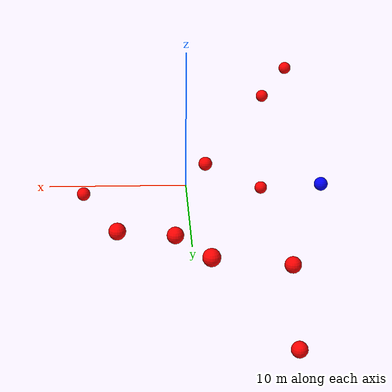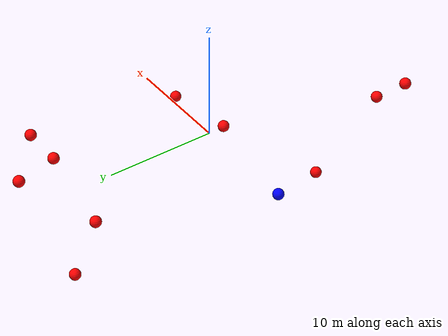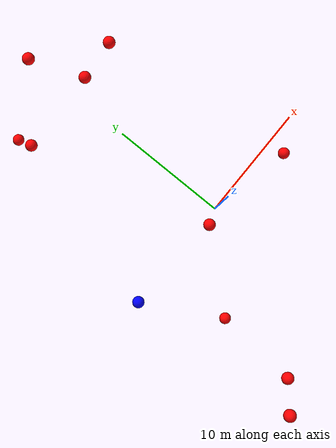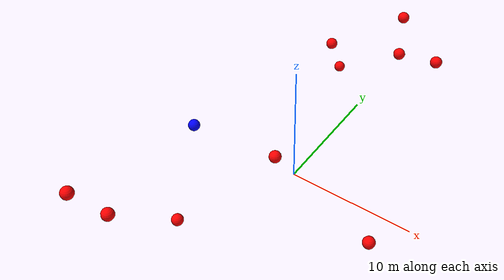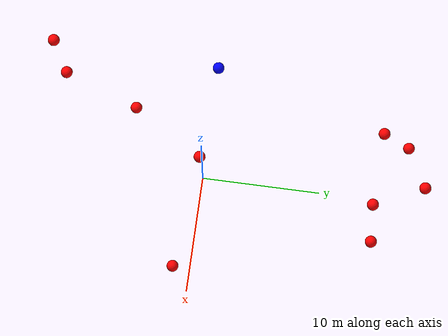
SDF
<?xml version="1.0" ?>
<sdf version="1.8">
    <world name="3d_world">
        <physics name="1ms" type="ode">
            <max_step_size>0.001</max_step_size>
            <real_time_factor>1.0</real_time_factor>
            <real_time_update_rate>1000.0</real_time_update_rate>
        </physics>
        <gravity>0 0 0</gravity>

        <plugin
            filename="gz-sim-physics-system"
            name="gz::sim::v8::systems::Physics">
        </plugin>
        <plugin
            filename="libignition-gazebo-user-commands-system.so"
            name="ignition::gazebo::systems::UserCommands">
        </plugin>
        <plugin
            filename="gz-sim-scene-broadcaster-system"
            name="gz::sim::systems::SceneBroadcaster">
        </plugin>
        <plugin
            filename="gz-sim-sensors-system"
            name="gz::sim::systems::Sensors">
            <render_engine>ogre2</render_engine>
        </plugin>

        <light type="directional" name="sun">
            <cast_shadows>true</cast_shadows>
            <pose>0 0 10 0 0 0</pose>
            <diffuse>0.8 0.8 0.8 1</diffuse>
            <specular>0.2 0.2 0.2 1</specular>
            <attenuation>
                <range>1000</range>
                <constant>0.9</constant>
                <linear>0.01</linear>
                <quadratic>0.001</quadratic>
            </attenuation>
            <direction>-0.5 0.1 -0.9</direction>
        </light>

        <!-- AGENTE -->
        <model name='agente' canonical_link='chassis'>
            <pose relative_to='world'>-10.0 0 0.0 0 0 0</pose>
            <link name='chassis'>
                <pose relative_to='__model__'>0.0 0 0.0 0 0 0</pose>
                <inertial>
                    <mass>1.14395</mass>
                    <inertia>
                        <ixx>0.095329</ixx>
                        <ixy>0</ixy>
                        <ixz>0</ixz>
                        <iyy>0.381317</iyy>
                        <iyz>0</iyz>
                        <izz>0.476646</izz>
                    </inertia>
                </inertial>
                <visual name='visual'>
                    <geometry>
                        <sphere>
                            <radius>0.5</radius>
                        </sphere>
                    </geometry>
                    <material>
                        <ambient>0.0 0.0 1.0 1</ambient>
                        <diffuse>0.0 0.0 1.0 1</diffuse>
                        <specular>0.0 0.0 1.0 1</specular>
                    </material>
                </visual>
                <collision name='collision'>
                    <geometry>
                        <sphere>
                            <radius>0.5</radius>
                        </sphere>
                    </geometry>
                </collision>
                <enable_gravity>false</enable_gravity>
            </link>

            <link name='lidar_link'>
                <pose relative_to='chassis'>0.0 0 0.1 0 0 0</pose>
                <inertial>
                    <mass>0.1</mass>
                    <inertia>
                        <ixx>0.000166667</ixx>
                        <iyy>0.000166667</iyy>
                        <izz>0.000166667</izz>
                    </inertia>
                </inertial>
                <collision name='collision'>
                    <geometry>
                        <cylinder>
                            <radius>0.05</radius>
                            <length>0.1</length>
                        </cylinder>
                    </geometry>
                </collision>
                <visual name='visual'>
                    <geometry>
                        <cylinder>
                            <radius>0.05</radius>
                            <length>0.1</length>
                        </cylinder>
                    </geometry>
                    <material>
                        <ambient>0.0 1.0 0.0 1</ambient>
                        <diffuse>0.0 1.0 0.0 1</diffuse>
                        <specular>0.0 1.0 0.0 1</specular>
                    </material>
                </visual>
                <sensor name="lidar" type="gpu_lidar">
                    <topic>scan</topic>
                    <update_rate>10</update_rate>
                    <lidar>
                        <scan>
                            <horizontal>
                                <samples>5000</samples>
                                <resolution>1</resolution>
                                <min_angle>-3.14159</min_angle>
                                <max_angle>3.14159</max_angle>
                            </horizontal>
                        </scan>
                        <range>
                            <min>0.1</min>
                            <max>10.0</max>
                            <resolution>0.01</resolution>
                        </range>
                    </lidar>
                    <visualize>true</visualize>
                    <always_on>true</always_on>
                    <update_rate>10</update_rate>
                    <pose_frame>lidar</pose_frame>
                </sensor>
                <enable_gravity>false</enable_gravity>
            </link>

            <joint name="lidar_joint" type="fixed">
                <parent>chassis</parent>
                <child>lidar_link</child>
            </joint>

            <plugin
                filename="ignition-gazebo-joint-state-publisher-system"
                name="ignition::gazebo::systems::JointStatePublisher">
            </plugin>
            <plugin
                filename="ignition-gazebo-odometry-publisher-system"
                name="ignition::gazebo::systems::OdometryPublisher">
                <dimensions>3</dimensions>
            </plugin>
            <plugin
                filename="ignition-gazebo-velocity-control-system"
                name="ignition::gazebo::systems::VelocityControl">
                <initial_linear>0.0 0 0</initial_linear>
                <initial_angular>0 0 0.0</initial_angular>
            </plugin>
            <plugin
                filename="libignition-gazebo-pose-publisher-system.so"
                name="ignition::gazebo::systems::PosePublisher">
                <topic>/agente/pose</topic>
                <frame_id>agente</frame_id>
                <update_rate>30</update_rate>
            </plugin>
        </model>

        <!-- OBSTACLE 1 -->
        <model name='obstacle_1' canonical_link='obstacle'>
            <static>false</static>
            <pose relative_to='world'>-5.64 14.93 1.26 0 0 0</pose>
            <link name='obstacle'>
                <pose relative_to='__model__'>0.0 0 0.0 0 0 0</pose>
                <visual name='visual'>
                    <geometry>
                        <sphere>
                            <radius>0.50</radius>
                        </sphere>
                    </geometry>
                    <material>
                        <ambient>1.0 0.0 0.0 1</ambient>
                        <diffuse>1.0 0.0 0.0 1</diffuse>
                        <specular>1.0 0.0 0.0 1</specular>
                    </material>
                </visual>
                <collision name='collision'>
                    <geometry>
                        <sphere>
                            <radius>0.50</radius>
                        </sphere>
                    </geometry>
                </collision>
                <enable_gravity>false</enable_gravity>
            </link>

            <plugin
                filename="ignition-gazebo-velocity-control-system"
                name="ignition::gazebo::systems::VelocityControl">
                <initial_linear>0.37 -1.96 -0.16</initial_linear>
                <initial_angular>0 0 0</initial_angular>
            </plugin>

            <plugin
                filename="ignition-gazebo-odometry-publisher-system"
                name="ignition::gazebo::systems::OdometryPublisher">
                <dimensions>3</dimensions>
            </plugin>
        </model>

        <!-- OBSTACLE 2 -->
        <model name='obstacle_2' canonical_link='obstacle'>
            <static>false</static>
            <pose relative_to='world'>-6.45 -6.78 -3.15 0 0 0</pose>
            <link name='obstacle'>
                <pose relative_to='__model__'>0.0 0 0.0 0 0 0</pose>
                <visual name='visual'>
                    <geometry>
                        <sphere>
                            <radius>0.50</radius>
                        </sphere>
                    </geometry>
                    <material>
                        <ambient>1.0 0.0 0.0 1</ambient>
                        <diffuse>1.0 0.0 0.0 1</diffuse>
                        <specular>1.0 0.0 0.0 1</specular>
                    </material>
                </visual>
                <collision name='collision'>
                    <geometry>
                        <sphere>
                            <radius>0.50</radius>
                        </sphere>
                    </geometry>
                </collision>
                <enable_gravity>false</enable_gravity>
            </link>

            <plugin
                filename="ignition-gazebo-velocity-control-system"
                name="ignition::gazebo::systems::VelocityControl">
                <initial_linear>1.57 1.13 0.52</initial_linear>
                <initial_angular>0 0 0</initial_angular>
            </plugin>

            <plugin
                filename="ignition-gazebo-odometry-publisher-system"
                name="ignition::gazebo::systems::OdometryPublisher">
                <dimensions>3</dimensions>
            </plugin>
        </model>

        <!-- OBSTACLE 3 -->
        <model name='obstacle_3' canonical_link='obstacle'>
            <static>false</static>
            <pose relative_to='world'>4.53 14.88 3.54 0 0 0</pose>
            <link name='obstacle'>
                <pose relative_to='__model__'>0.0 0 0.0 0 0 0</pose>
                <visual name='visual'>
                    <geometry>
                        <sphere>
                            <radius>0.50</radius>
                        </sphere>
                    </geometry>
                    <material>
                        <ambient>1.0 0.0 0.0 1</ambient>
                        <diffuse>1.0 0.0 0.0 1</diffuse>
                        <specular>1.0 0.0 0.0 1</specular>
                    </material>
                </visual>
                <collision name='collision'>
                    <geometry>
                        <sphere>
                            <radius>0.50</radius>
                        </sphere>
                    </geometry>
                </collision>
                <enable_gravity>false</enable_gravity>
            </link>

            <plugin
                filename="ignition-gazebo-velocity-control-system"
                name="ignition::gazebo::systems::VelocityControl">
                <initial_linear>-0.52 -1.88 -0.45</initial_linear>
                <initial_angular>0 0 0</initial_angular>
            </plugin>

            <plugin
                filename="ignition-gazebo-odometry-publisher-system"
                name="ignition::gazebo::systems::OdometryPublisher">
                <dimensions>3</dimensions>
            </plugin>
        </model>

        <!-- OBSTACLE 4 -->
        <model name='obstacle_4' canonical_link='obstacle'>
            <static>false</static>
            <pose relative_to='world'>-0.59 18.86 3.87 0 0 0</pose>
            <link name='obstacle'>
                <pose relative_to='__model__'>0.0 0 0.0 0 0 0</pose>
                <visual name='visual'>
                    <geometry>
                        <sphere>
                            <radius>0.50</radius>
                        </sphere>
                    </geometry>
                    <material>
                        <ambient>1.0 0.0 0.0 1</ambient>
                        <diffuse>1.0 0.0 0.0 1</diffuse>
                        <specular>1.0 0.0 0.0 1</specular>
                    </material>
                </visual>
                <collision name='collision'>
                    <geometry>
                        <sphere>
                            <radius>0.50</radius>
                        </sphere>
                    </geometry>
                </collision>
                <enable_gravity>false</enable_gravity>
            </link>

            <plugin
                filename="ignition-gazebo-velocity-control-system"
                name="ignition::gazebo::systems::VelocityControl">
                <initial_linear>-0.02 -1.96 -0.40</initial_linear>
                <initial_angular>0 0 0</initial_angular>
            </plugin>

            <plugin
                filename="ignition-gazebo-odometry-publisher-system"
                name="ignition::gazebo::systems::OdometryPublisher">
                <dimensions>3</dimensions>
            </plugin>
        </model>

        <!-- OBSTACLE 5 -->
        <model name='obstacle_5' canonical_link='obstacle'>
            <static>false</static>
            <pose relative_to='world'>-7.01 -12.67 2.85 0 0 0</pose>
            <link name='obstacle'>
                <pose relative_to='__model__'>0.0 0 0.0 0 0 0</pose>
                <visual name='visual'>
                    <geometry>
                        <sphere>
                            <radius>0.50</radius>
                        </sphere>
                    </geometry>
                    <material>
                        <ambient>1.0 0.0 0.0 1</ambient>
                        <diffuse>1.0 0.0 0.0 1</diffuse>
                        <specular>1.0 0.0 0.0 1</specular>
                    </material>
                </visual>
                <collision name='collision'>
                    <geometry>
                        <sphere>
                            <radius>0.50</radius>
                        </sphere>
                    </geometry>
                </collision>
                <enable_gravity>false</enable_gravity>
            </link>

            <plugin
                filename="ignition-gazebo-velocity-control-system"
                name="ignition::gazebo::systems::VelocityControl">
                <initial_linear>0.84 1.77 -0.40</initial_linear>
                <initial_angular>0 0 0</initial_angular>
            </plugin>

            <plugin
                filename="ignition-gazebo-odometry-publisher-system"
                name="ignition::gazebo::systems::OdometryPublisher">
                <dimensions>3</dimensions>
            </plugin>
        </model>

        <!-- OBSTACLE 6 -->
        <model name='obstacle_6' canonical_link='obstacle'>
            <static>false</static>
            <pose relative_to='world'>-1.45 -0.46 1.52 0 0 0</pose>
            <link name='obstacle'>
                <pose relative_to='__model__'>0.0 0 0.0 0 0 0</pose>
                <visual name='visual'>
                    <geometry>
                        <sphere>
                            <radius>0.50</radius>
                        </sphere>
                    </geometry>
                    <material>
                        <ambient>1.0 0.0 0.0 1</ambient>
                        <diffuse>1.0 0.0 0.0 1</diffuse>
                        <specular>1.0 0.0 0.0 1</specular>
                    </material>
                </visual>
                <collision name='collision'>
                    <geometry>
                        <sphere>
                            <radius>0.50</radius>
                        </sphere>
                    </geometry>
                </collision>
                <enable_gravity>false</enable_gravity>
            </link>

            <plugin
                filename="ignition-gazebo-velocity-control-system"
                name="ignition::gazebo::systems::VelocityControl">
                <initial_linear>-0.84 0.18 -0.59</initial_linear>
                <initial_angular>0 0 0</initial_angular>
            </plugin>

            <plugin
                filename="ignition-gazebo-odometry-publisher-system"
                name="ignition::gazebo::systems::OdometryPublisher">
                <dimensions>3</dimensions>
            </plugin>
        </model>

        <!-- OBSTACLE 7 -->
        <model name='obstacle_7' canonical_link='obstacle'>
            <static>false</static>
            <pose relative_to='world'>7.66 -1.57 -1.28 0 0 0</pose>
            <link name='obstacle'>
                <pose relative_to='__model__'>0.0 0 0.0 0 0 0</pose>
                <visual name='visual'>
                    <geometry>
                        <sphere>
                            <radius>0.50</radius>
                        </sphere>
                    </geometry>
                    <material>
                        <ambient>1.0 0.0 0.0 1</ambient>
                        <diffuse>1.0 0.0 0.0 1</diffuse>
                        <specular>1.0 0.0 0.0 1</specular>
                    </material>
                </visual>
                <collision name='collision'>
                    <geometry>
                        <sphere>
                            <radius>0.50</radius>
                        </sphere>
                    </geometry>
                </collision>
                <enable_gravity>false</enable_gravity>
            </link>

            <plugin
                filename="ignition-gazebo-velocity-control-system"
                name="ignition::gazebo::systems::VelocityControl">
                <initial_linear>-1.02 0.31 0.25</initial_linear>
                <initial_angular>0 0 0</initial_angular>
            </plugin>

            <plugin
                filename="ignition-gazebo-odometry-publisher-system"
                name="ignition::gazebo::systems::OdometryPublisher">
                <dimensions>3</dimensions>
            </plugin>
        </model>

        <!-- OBSTACLE 8 -->
        <model name='obstacle_8' canonical_link='obstacle'>
            <static>false</static>
            <pose relative_to='world'>1.21 14.67 3.14 0 0 0</pose>
            <link name='obstacle'>
                <pose relative_to='__model__'>0.0 0 0.0 0 0 0</pose>
                <visual name='visual'>
                    <geometry>
                        <sphere>
                            <radius>0.50</radius>
                        </sphere>
                    </geometry>
                    <material>
                        <ambient>1.0 0.0 0.0 1</ambient>
                        <diffuse>1.0 0.0 0.0 1</diffuse>
                        <specular>1.0 0.0 0.0 1</specular>
                    </material>
                </visual>
                <collision name='collision'>
                    <geometry>
                        <sphere>
                            <radius>0.50</radius>
                        </sphere>
                    </geometry>
                </collision>
                <enable_gravity>false</enable_gravity>
            </link>

            <plugin
                filename="ignition-gazebo-velocity-control-system"
                name="ignition::gazebo::systems::VelocityControl">
                <initial_linear>0.33 -1.93 -0.41</initial_linear>
                <initial_angular>0 0 0</initial_angular>
            </plugin>

            <plugin
                filename="ignition-gazebo-odometry-publisher-system"
                name="ignition::gazebo::systems::OdometryPublisher">
                <dimensions>3</dimensions>
            </plugin>
        </model>

        <!-- OBSTACLE 9 -->
        <model name='obstacle_9' canonical_link='obstacle'>
            <static>false</static>
            <pose relative_to='world'>-9.05 -13.97 4.93 0 0 0</pose>
            <link name='obstacle'>
                <pose relative_to='__model__'>0.0 0 0.0 0 0 0</pose>
                <visual name='visual'>
                    <geometry>
                        <sphere>
                            <radius>0.50</radius>
                        </sphere>
                    </geometry>
                    <material>
                        <ambient>1.0 0.0 0.0 1</ambient>
                        <diffuse>1.0 0.0 0.0 1</diffuse>
                        <specular>1.0 0.0 0.0 1</specular>
                    </material>
                </visual>
                <collision name='collision'>
                    <geometry>
                        <sphere>
                            <radius>0.50</radius>
                        </sphere>
                    </geometry>
                </collision>
                <enable_gravity>false</enable_gravity>
            </link>

            <plugin
                filename="ignition-gazebo-velocity-control-system"
                name="ignition::gazebo::systems::VelocityControl">
                <initial_linear>1.37 1.37 -0.48</initial_linear>
                <initial_angular>0 0 0</initial_angular>
            </plugin>

            <plugin
                filename="ignition-gazebo-odometry-publisher-system"
                name="ignition::gazebo::systems::OdometryPublisher">
                <dimensions>3</dimensions>
            </plugin>
        </model>

        <!-- OBSTACLE 10 -->
        <model name='obstacle_10' canonical_link='obstacle'>
            <static>false</static>
            <pose relative_to='world'>-5.88 17.25 -3.02 0 0 0</pose>
            <link name='obstacle'>
                <pose relative_to='__model__'>0.0 0 0.0 0 0 0</pose>
                <visual name='visual'>
                    <geometry>
                        <sphere>
                            <radius>0.50</radius>
                        </sphere>
                    </geometry>
                    <material>
                        <ambient>1.0 0.0 0.0 1</ambient>
                        <diffuse>1.0 0.0 0.0 1</diffuse>
                        <specular>1.0 0.0 0.0 1</specular>
                    </material>
                </visual>
                <collision name='collision'>
                    <geometry>
                        <sphere>
                            <radius>0.50</radius>
                        </sphere>
                    </geometry>
                </collision>
                <enable_gravity>false</enable_gravity>
            </link>

            <plugin
                filename="ignition-gazebo-velocity-control-system"
                name="ignition::gazebo::systems::VelocityControl">
                <initial_linear>1.16 -1.60 0.28</initial_linear>
                <initial_angular>0 0 0</initial_angular>
            </plugin>

            <plugin
                filename="ignition-gazebo-odometry-publisher-system"
                name="ignition::gazebo::systems::OdometryPublisher">
                <dimensions>3</dimensions>
            </plugin>
        </model>

    </world>
</sdf>
